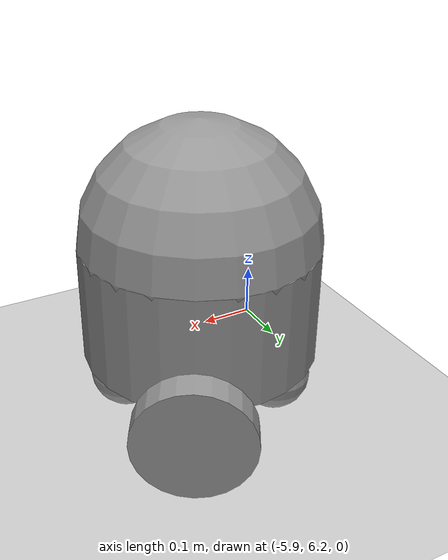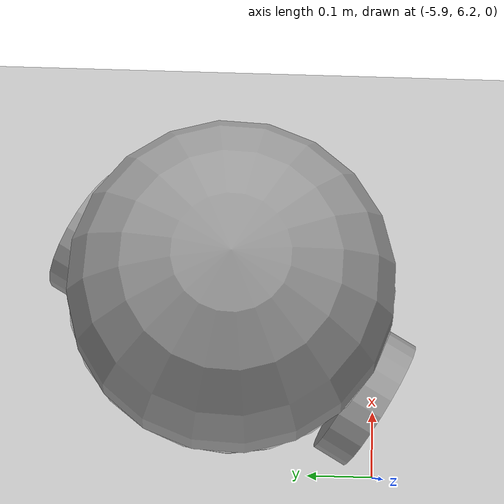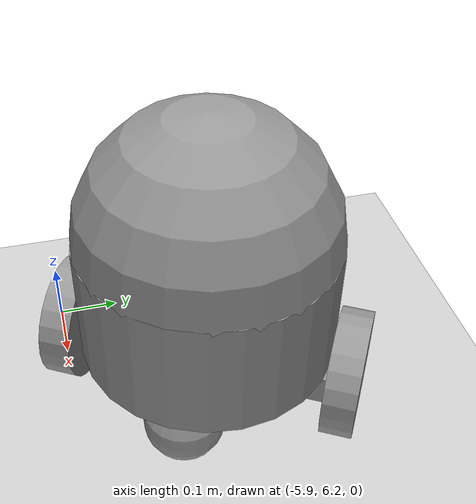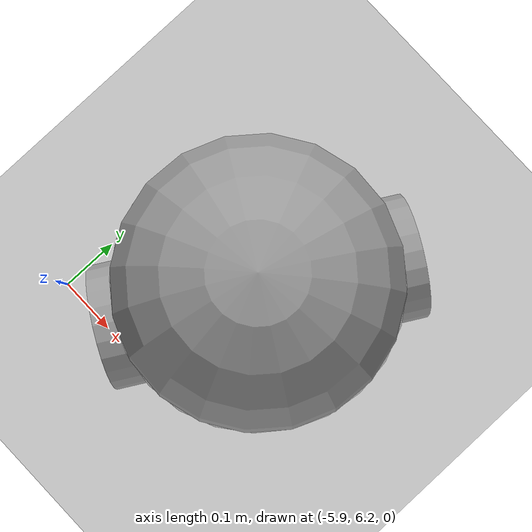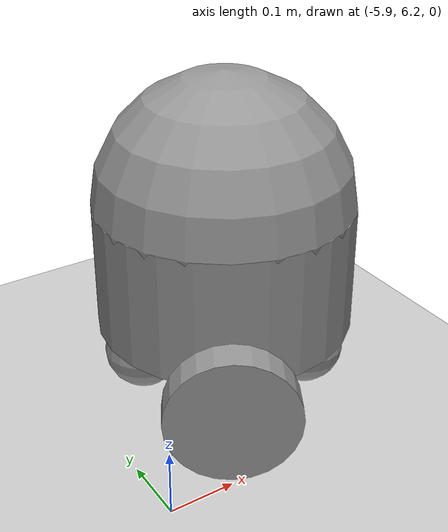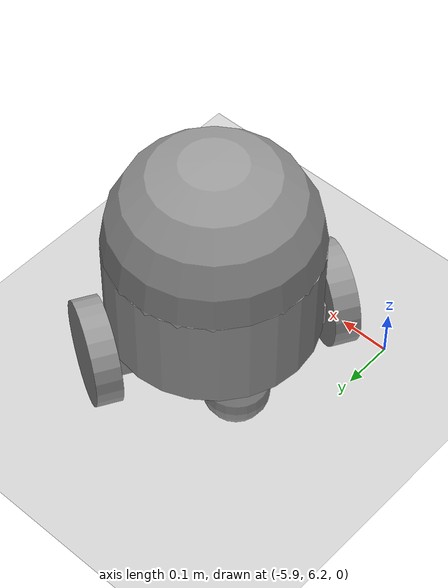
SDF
<sdf version="1.6">
 <world name="default">
  <model name="ground_plane">
   <static>1</static>
   <link name="link">
    <collision name="collision">
     <geometry><plane><normal>0 0 1</normal><size>100 100</size></plane></geometry>
     <surface><friction><ode><mu>100</mu><mu2>50</mu2></ode></friction></surface>
    </collision>
    <visual name="visual">
     <cast_shadows>0</cast_shadows>
     <geometry><plane><normal>0 0 1</normal><size>100 100</size></plane></geometry>
     <material>
      <script><uri>file://media/materials/scripts/gazebo.material</uri><name>Gazebo/Grey</name></script>
     </material>
    </visual>
   </link>
  </model>
  <model name="my_home_robot_0">
   <plugin name="robot_driver" filename="librobot_driver.so"/>
   <link name="link_0">
    <pose>0 4e-06 -0.039286 0 -0 0</pose>
    <inertial>
     <mass>1</mass>
     <inertia>
      <ixx>0.166667</ixx>
      <ixy>0</ixy>
      <ixz>0</ixz>
      <iyy>0.166667</iyy>
      <iyz>0</iyz>
      <izz>0.166667</izz>
     </inertia>
    </inertial>
    <visual name="visual">
     <geometry><box><size>0.1 0.4 0.05</size></box></geometry>
     <material>
      <lighting>1</lighting>
      <script><uri>file://media/materials/scripts/gazebo.material</uri><name>Gazebo/Grey</name></script>
      <shader type="pixel"><normal_map>__default__</normal_map></shader>
      <ambient>0.3 0.3 0.3 1</ambient>
      <diffuse>0.7 0.7 0.7 1</diffuse>
      <specular>0.01 0.01 0.01 1</specular>
      <emissive>0 0 0 1</emissive>
     </material>
    </visual>
    <collision name="collision">
     <geometry><box><size>0.1 0.4 0.05</size></box></geometry>
     <surface>
      <friction>
       <ode><mu>1</mu><mu2>1</mu2><fdir1>0 0 0</fdir1><slip1>0</slip1><slip2>0</slip2></ode>
       <torsional>
        <coefficient>1</coefficient>
        <patch_radius>0</patch_radius>
        <surface_radius>0</surface_radius>
        <use_patch_radius>1</use_patch_radius>
        <ode><slip>0</slip></ode>
       </torsional>
      </friction>
      <bounce><restitution_coefficient>0</restitution_coefficient><threshold>1e+06</threshold></bounce>
      <contact>
       <collide_without_contact>0</collide_without_contact>
       <collide_without_contact_bitmask>1</collide_without_contact_bitmask>
       <collide_bitmask>1</collide_bitmask>
       <ode>
        <soft_cfm>0</soft_cfm>
        <soft_erp>0.2</soft_erp>
        <kp>1e+13</kp>
        <kd>1</kd>
        <max_vel>0.01</max_vel>
        <min_depth>0</min_depth>
       </ode>
       <bullet>
        <split_impulse>1</split_impulse>
        <split_impulse_penetration_threshold>-0.01</split_impulse_penetration_threshold>
        <soft_cfm>0</soft_cfm>
        <soft_erp>0.2</soft_erp>
        <kp>1e+13</kp>
        <kd>1</kd>
       </bullet>
      </contact>
     </surface>
    </collision>
   </link>
   <link name="link_1">
    <pose>0 -0.225107 -0.039286 1.57 -0 0</pose>
    <inertial>
     <mass>1</mass>
     <inertia><ixx>0.145833</ixx><ixy>0</ixy><ixz>0</ixz><iyy>0.145833</iyy><iyz>0</iyz><izz>0.125</izz></inertia>
    </inertial>
    <visual name="visual">
     <geometry><cylinder><radius>0.1</radius><length>0.05</length></cylinder></geometry>
     <material>
      <lighting>1</lighting>
      <script><uri>file://media/materials/scripts/gazebo.material</uri><name>Gazebo/Grey</name></script>
      <shader type="pixel"><normal_map>__default__</normal_map></shader>
      <ambient>0.3 0.3 0.3 1</ambient>
      <diffuse>0.7 0.7 0.7 1</diffuse>
      <specular>0.01 0.01 0.01 1</specular>
      <emissive>0 0 0 1</emissive>
     </material>
    </visual>
    <collision name="collision">
     <geometry><cylinder><radius>0.1</radius><length>0.05</length></cylinder></geometry>
     <surface>
      <friction>
       <ode><mu>1</mu><mu2>1</mu2><fdir1>0 0 0</fdir1><slip1>0</slip1><slip2>0</slip2></ode>
       <torsional>
        <coefficient>1</coefficient>
        <patch_radius>0</patch_radius>
        <surface_radius>0</surface_radius>
        <use_patch_radius>1</use_patch_radius>
        <ode><slip>0</slip></ode>
       </torsional>
      </friction>
      <bounce><restitution_coefficient>0</restitution_coefficient><threshold>1e+06</threshold></bounce>
      <contact>
       <collide_without_contact>0</collide_without_contact>
       <collide_without_contact_bitmask>1</collide_without_contact_bitmask>
       <collide_bitmask>1</collide_bitmask>
       <ode>
        <soft_cfm>0</soft_cfm>
        <soft_erp>0.2</soft_erp>
        <kp>1e+13</kp>
        <kd>1</kd>
        <max_vel>0.01</max_vel>
        <min_depth>0</min_depth>
       </ode>
       <bullet>
        <split_impulse>1</split_impulse>
        <split_impulse_penetration_threshold>-0.01</split_impulse_penetration_threshold>
        <soft_cfm>0</soft_cfm>
        <soft_erp>0.2</soft_erp>
        <kp>1e+13</kp>
        <kd>1</kd>
       </bullet>
      </contact>
     </surface>
    </collision>
   </link>
   <link name="link_1_clone">
    <pose>0 0.225084 -0.039286 1.57 -0 0</pose>
    <inertial>
     <mass>1</mass>
     <inertia><ixx>0.145833</ixx><ixy>0</ixy><ixz>0</ixz><iyy>0.145833</iyy><iyz>0</iyz><izz>0.125</izz></inertia>
    </inertial>
    <visual name="visual">
     <geometry><cylinder><radius>0.1</radius><length>0.05</length></cylinder></geometry>
     <material>
      <lighting>1</lighting>
      <script><uri>file://media/materials/scripts/gazebo.material</uri><name>Gazebo/Grey</name></script>
      <shader type="pixel"><normal_map>__default__</normal_map></shader>
      <ambient>0.3 0.3 0.3 1</ambient>
      <diffuse>0.7 0.7 0.7 1</diffuse>
      <specular>0.01 0.01 0.01 1</specular>
      <emissive>0 0 0 1</emissive>
     </material>
    </visual>
    <collision name="collision">
     <geometry><cylinder><radius>0.1</radius><length>0.05</length></cylinder></geometry>
     <surface>
      <friction>
       <ode><mu>1</mu><mu2>1</mu2><fdir1>0 0 0</fdir1><slip1>0</slip1><slip2>0</slip2></ode>
       <torsional>
        <coefficient>1</coefficient>
        <patch_radius>0</patch_radius>
        <surface_radius>0</surface_radius>
        <use_patch_radius>1</use_patch_radius>
        <ode><slip>0</slip></ode>
       </torsional>
      </friction>
      <bounce><restitution_coefficient>0</restitution_coefficient><threshold>1e+06</threshold></bounce>
      <contact>
       <collide_without_contact>0</collide_without_contact>
       <collide_without_contact_bitmask>1</collide_without_contact_bitmask>
       <collide_bitmask>1</collide_bitmask>
       <ode>
        <soft_cfm>0</soft_cfm>
        <soft_erp>0.2</soft_erp>
        <kp>1e+13</kp>
        <kd>1</kd>
        <max_vel>0.01</max_vel>
        <min_depth>0</min_depth>
       </ode>
       <bullet>
        <split_impulse>1</split_impulse>
        <split_impulse_penetration_threshold>-0.01</split_impulse_penetration_threshold>
        <soft_cfm>0</soft_cfm>
        <soft_erp>0.2</soft_erp>
        <kp>1e+13</kp>
        <kd>1</kd>
       </bullet>
      </contact>
     </surface>
    </collision>
   </link>
   <link name="link_2">
    <pose>0 4e-06 0.085714 0 -0 0</pose>
    <inertial>
     <mass>1</mass>
     <inertia><ixx>0.145833</ixx><ixy>0</ixy><ixz>0</ixz><iyy>0.145833</iyy><iyz>0</iyz><izz>0.125</izz></inertia>
    </inertial>
    <visual name="visual">
     <geometry><cylinder><radius>0.2</radius><length>0.2</length></cylinder></geometry>
     <material>
      <lighting>1</lighting>
      <script><uri>file://media/materials/scripts/gazebo.material</uri><name>Gazebo/Grey</name></script>
      <shader type="pixel"><normal_map>__default__</normal_map></shader>
      <ambient>0.3 0.3 0.3 1</ambient>
      <diffuse>0.7 0.7 0.7 1</diffuse>
      <specular>0.01 0.01 0.01 1</specular>
      <emissive>0 0 0 1</emissive>
     </material>
    </visual>
    <collision name="collision">
     <geometry><cylinder><radius>0.2</radius><length>0.2</length></cylinder></geometry>
     <surface>
      <friction>
       <ode><mu>1</mu><mu2>1</mu2><fdir1>0 0 0</fdir1><slip1>0</slip1><slip2>0</slip2></ode>
       <torsional>
        <coefficient>1</coefficient>
        <patch_radius>0</patch_radius>
        <surface_radius>0</surface_radius>
        <use_patch_radius>1</use_patch_radius>
        <ode><slip>0</slip></ode>
       </torsional>
      </friction>
      <bounce><restitution_coefficient>0</restitution_coefficient><threshold>1e+06</threshold></bounce>
      <contact>
       <collide_without_contact>0</collide_without_contact>
       <collide_without_contact_bitmask>1</collide_without_contact_bitmask>
       <collide_bitmask>1</collide_bitmask>
       <ode>
        <soft_cfm>0</soft_cfm>
        <soft_erp>0.2</soft_erp>
        <kp>1e+13</kp>
        <kd>1</kd>
        <max_vel>0.01</max_vel>
        <min_depth>0</min_depth>
       </ode>
       <bullet>
        <split_impulse>1</split_impulse>
        <split_impulse_penetration_threshold>-0.01</split_impulse_penetration_threshold>
        <soft_cfm>0</soft_cfm>
        <soft_erp>0.2</soft_erp>
        <kp>1e+13</kp>
        <kd>1</kd>
       </bullet>
      </contact>
     </surface>
    </collision>
   </link>
   <link name="link_3">
    <pose>0 4e-06 0.185714 0 -0 0</pose>
    <inertial>
     <mass>1</mass>
     <inertia><ixx>0.1</ixx><ixy>0</ixy><ixz>0</ixz><iyy>0.1</iyy><iyz>0</iyz><izz>0.1</izz></inertia>
    </inertial>
    <visual name="visual">
     <geometry><sphere><radius>0.2</radius></sphere></geometry>
     <material>
      <lighting>1</lighting>
      <script><uri>file://media/materials/scripts/gazebo.material</uri><name>Gazebo/Grey</name></script>
      <shader type="pixel"><normal_map>__default__</normal_map></shader>
      <ambient>0.3 0.3 0.3 1</ambient>
      <diffuse>0.7 0.7 0.7 1</diffuse>
      <specular>0.01 0.01 0.01 1</specular>
      <emissive>0 0 0 1</emissive>
     </material>
    </visual>
    <collision name="collision">
     <geometry><sphere><radius>0.2</radius></sphere></geometry>
     <surface>
      <friction>
       <ode><mu>1</mu><mu2>1</mu2><fdir1>0 0 0</fdir1><slip1>0</slip1><slip2>0</slip2></ode>
       <torsional>
        <coefficient>1</coefficient>
        <patch_radius>0</patch_radius>
        <surface_radius>0</surface_radius>
        <use_patch_radius>1</use_patch_radius>
        <ode><slip>0</slip></ode>
       </torsional>
      </friction>
      <bounce><restitution_coefficient>0</restitution_coefficient><threshold>1e+06</threshold></bounce>
      <contact>
       <collide_without_contact>0</collide_without_contact>
       <collide_without_contact_bitmask>1</collide_without_contact_bitmask>
       <collide_bitmask>1</collide_bitmask>
       <ode>
        <soft_cfm>0</soft_cfm>
        <soft_erp>0.2</soft_erp>
        <kp>1e+13</kp>
        <kd>1</kd>
        <max_vel>0.01</max_vel>
        <min_depth>0</min_depth>
       </ode>
       <bullet>
        <split_impulse>1</split_impulse>
        <split_impulse_penetration_threshold>-0.01</split_impulse_penetration_threshold>
        <soft_cfm>0</soft_cfm>
        <soft_erp>0.2</soft_erp>
        <kp>1e+13</kp>
        <kd>1</kd>
       </bullet>
      </contact>
     </surface>
    </collision>
   </link>
   <link name="link_4">
    <pose>0.13 4e-06 -0.076786 0 -0 0</pose>
    <inertial>
     <mass>1</mass>
     <inertia><ixx>0.1</ixx><ixy>0</ixy><ixz>0</ixz><iyy>0.1</iyy><iyz>0</iyz><izz>0.1</izz></inertia>
    </inertial>
    <visual name="visual">
     <geometry><sphere><radius>0.0625</radius></sphere></geometry>
     <material>
      <lighting>1</lighting>
      <script><uri>file://media/materials/scripts/gazebo.material</uri><name>Gazebo/Grey</name></script>
      <shader type="pixel"><normal_map>__default__</normal_map></shader>
      <ambient>0.3 0.3 0.3 1</ambient>
      <diffuse>0.7 0.7 0.7 1</diffuse>
      <specular>0.01 0.01 0.01 1</specular>
      <emissive>0 0 0 1</emissive>
     </material>
    </visual>
    <collision name="collision">
     <geometry><sphere><radius>0.0625</radius></sphere></geometry>
     <surface>
      <friction>
       <ode><mu>1</mu><mu2>1</mu2><fdir1>0 0 0</fdir1><slip1>0</slip1><slip2>0</slip2></ode>
       <torsional>
        <coefficient>1</coefficient>
        <patch_radius>0</patch_radius>
        <surface_radius>0</surface_radius>
        <use_patch_radius>1</use_patch_radius>
        <ode><slip>0</slip></ode>
       </torsional>
      </friction>
      <bounce><restitution_coefficient>0</restitution_coefficient><threshold>1e+06</threshold></bounce>
      <contact>
       <collide_without_contact>0</collide_without_contact>
       <collide_without_contact_bitmask>1</collide_without_contact_bitmask>
       <collide_bitmask>1</collide_bitmask>
       <ode>
        <soft_cfm>0</soft_cfm>
        <soft_erp>0.2</soft_erp>
        <kp>1e+13</kp>
        <kd>1</kd>
        <max_vel>0.01</max_vel>
        <min_depth>0</min_depth>
       </ode>
       <bullet>
        <split_impulse>1</split_impulse>
        <split_impulse_penetration_threshold>-0.01</split_impulse_penetration_threshold>
        <soft_cfm>0</soft_cfm>
        <soft_erp>0.2</soft_erp>
        <kp>1e+13</kp>
        <kd>1</kd>
       </bullet>
      </contact>
     </surface>
    </collision>
   </link>
   <link name="link_4_clone">
    <pose>-0.13 4e-06 -0.076786 0 -0 0</pose>
    <inertial>
     <mass>1</mass>
     <inertia><ixx>0.1</ixx><ixy>0</ixy><ixz>0</ixz><iyy>0.1</iyy><iyz>0</iyz><izz>0.1</izz></inertia>
    </inertial>
    <visual name="visual">
     <geometry><sphere><radius>0.0625</radius></sphere></geometry>
     <material>
      <lighting>1</lighting>
      <script><uri>file://media/materials/scripts/gazebo.material</uri><name>Gazebo/Grey</name></script>
      <shader type="pixel"><normal_map>__default__</normal_map></shader>
      <ambient>0.3 0.3 0.3 1</ambient>
      <diffuse>0.7 0.7 0.7 1</diffuse>
      <specular>0.01 0.01 0.01 1</specular>
      <emissive>0 0 0 1</emissive>
     </material>
    </visual>
    <collision name="collision">
     <geometry><sphere><radius>0.0625</radius></sphere></geometry>
     <surface>
      <friction>
       <ode><mu>1</mu><mu2>1</mu2><fdir1>0 0 0</fdir1><slip1>0</slip1><slip2>0</slip2></ode>
       <torsional>
        <coefficient>1</coefficient>
        <patch_radius>0</patch_radius>
        <surface_radius>0</surface_radius>
        <use_patch_radius>1</use_patch_radius>
        <ode><slip>0</slip></ode>
       </torsional>
      </friction>
      <bounce><restitution_coefficient>0</restitution_coefficient><threshold>1e+06</threshold></bounce>
      <contact>
       <collide_without_contact>0</collide_without_contact>
       <collide_without_contact_bitmask>1</collide_without_contact_bitmask>
       <collide_bitmask>1</collide_bitmask>
       <ode>
        <soft_cfm>0</soft_cfm>
        <soft_erp>0.2</soft_erp>
        <kp>1e+13</kp>
        <kd>1</kd>
        <max_vel>0.01</max_vel>
        <min_depth>0</min_depth>
       </ode>
       <bullet>
        <split_impulse>1</split_impulse>
        <split_impulse_penetration_threshold>-0.01</split_impulse_penetration_threshold>
        <soft_cfm>0</soft_cfm>
        <soft_erp>0.2</soft_erp>
        <kp>1e+13</kp>
        <kd>1</kd>
       </bullet>
      </contact>
     </surface>
    </collision>
   </link>
   <joint name="link_0_JOINT_1" type="revolute">
    <parent>link_0</parent>
    <child>link_1</child>
    <axis>
     <xyz>0 0 1</xyz>
     <use_parent_model_frame>0</use_parent_model_frame>
     <limit>
      <lower>-1.79769e+308</lower>
      <upper>1.79769e+308</upper>
      <effort>-1</effort>
      <velocity>-1</velocity>
     </limit>
     <dynamics>
      <spring_reference>0</spring_reference>
      <spring_stiffness>0</spring_stiffness>
      <damping>0</damping>
     </dynamics>
    </axis>
    <physics>
     <ode><limit><cfm>0</cfm><erp>0.2</erp></limit><suspension><cfm>0</cfm><erp>0.2</erp></suspension></ode>
    </physics>
   </joint>
   <joint name="link_0_JOINT_2" type="revolute">
    <parent>link_0</parent>
    <child>link_1_clone</child>
    <axis>
     <xyz>0 0 1</xyz>
     <use_parent_model_frame>0</use_parent_model_frame>
     <limit>
      <lower>-1.79769e+308</lower>
      <upper>1.79769e+308</upper>
      <effort>-1</effort>
      <velocity>-1</velocity>
     </limit>
     <dynamics>
      <spring_reference>0</spring_reference>
      <spring_stiffness>0</spring_stiffness>
      <damping>0</damping>
     </dynamics>
    </axis>
    <physics>
     <ode><limit><cfm>0</cfm><erp>0.2</erp></limit><suspension><cfm>0</cfm><erp>0.2</erp></suspension></ode>
    </physics>
   </joint>
   <joint name="link_0_JOINT_3" type="fixed">
    <parent>link_0</parent>
    <child>link_2</child>
    <physics>
     <ode><limit><cfm>0</cfm><erp>0.2</erp></limit><suspension><cfm>0</cfm><erp>0.2</erp></suspension></ode>
    </physics>
   </joint>
   <joint name="link_2_JOINT_4" type="fixed">
    <parent>link_2</parent>
    <child>link_3</child>
    <physics>
     <ode><limit><cfm>0</cfm><erp>0.2</erp></limit><suspension><cfm>0</cfm><erp>0.2</erp></suspension></ode>
    </physics>
   </joint>
   <joint name="link_2_JOINT_5" type="ball">
    <parent>link_2</parent>
    <child>link_4</child>
    <physics>
     <ode><limit><cfm>0</cfm><erp>0.2</erp></limit><suspension><cfm>0</cfm><erp>0.2</erp></suspension></ode>
    </physics>
   </joint>
   <joint name="link_2_JOINT_6" type="ball">
    <parent>link_2</parent>
    <child>link_4_clone</child>
    <physics>
     <ode><limit><cfm>0</cfm><erp>0.2</erp></limit><suspension><cfm>0</cfm><erp>0.2</erp></suspension></ode>
    </physics>
   </joint>
   <static>0</static>
   <pose>-5.67016 6.42333 0.139303 1.1e-05 4.6e-05 -0.519939</pose>
  </model>
 </world>
</sdf>
